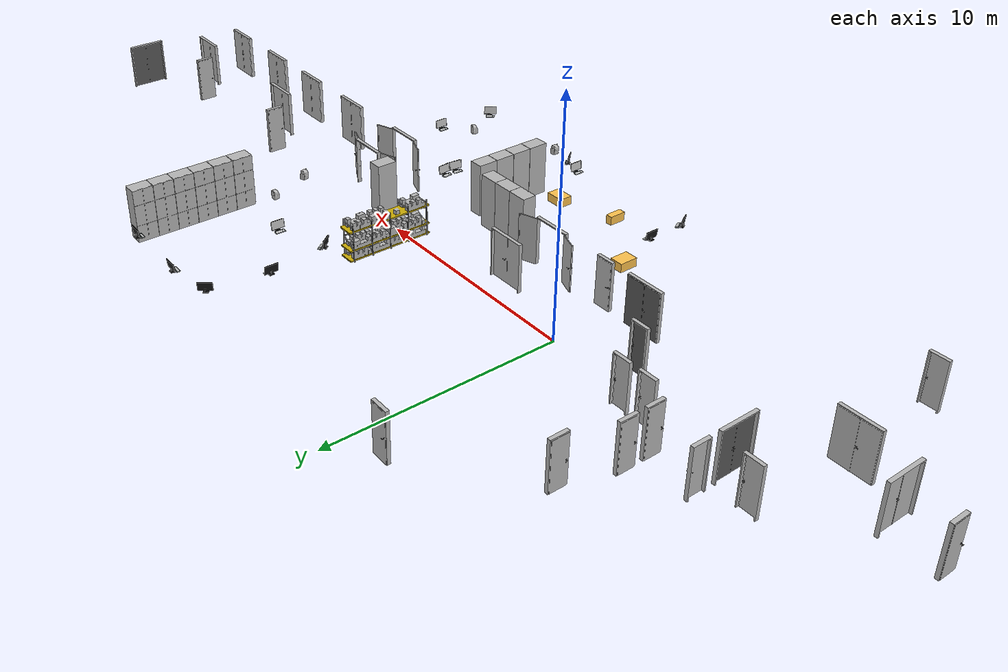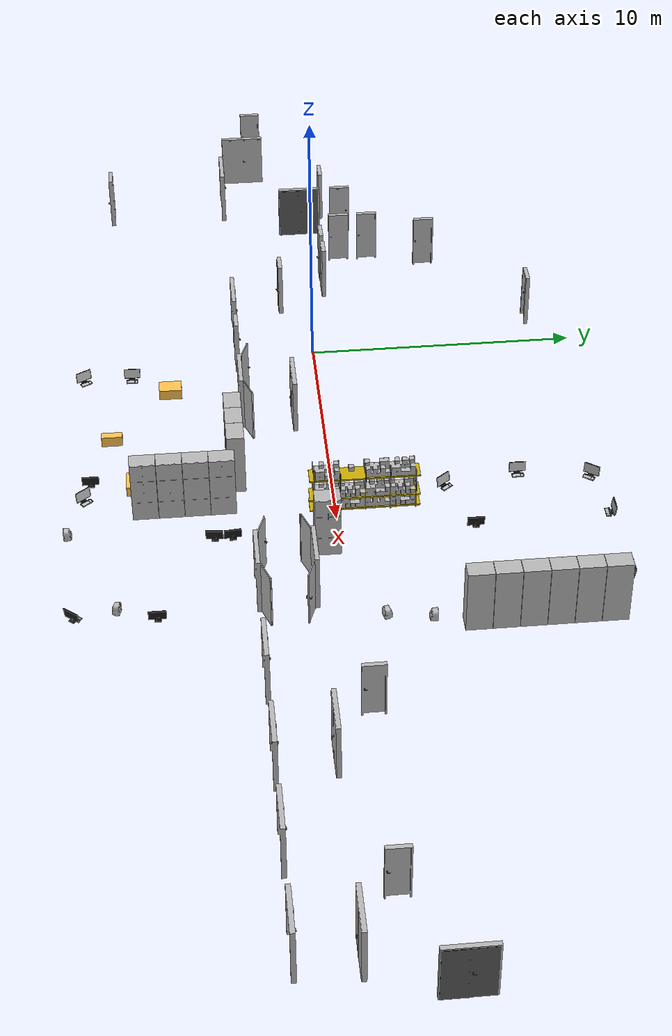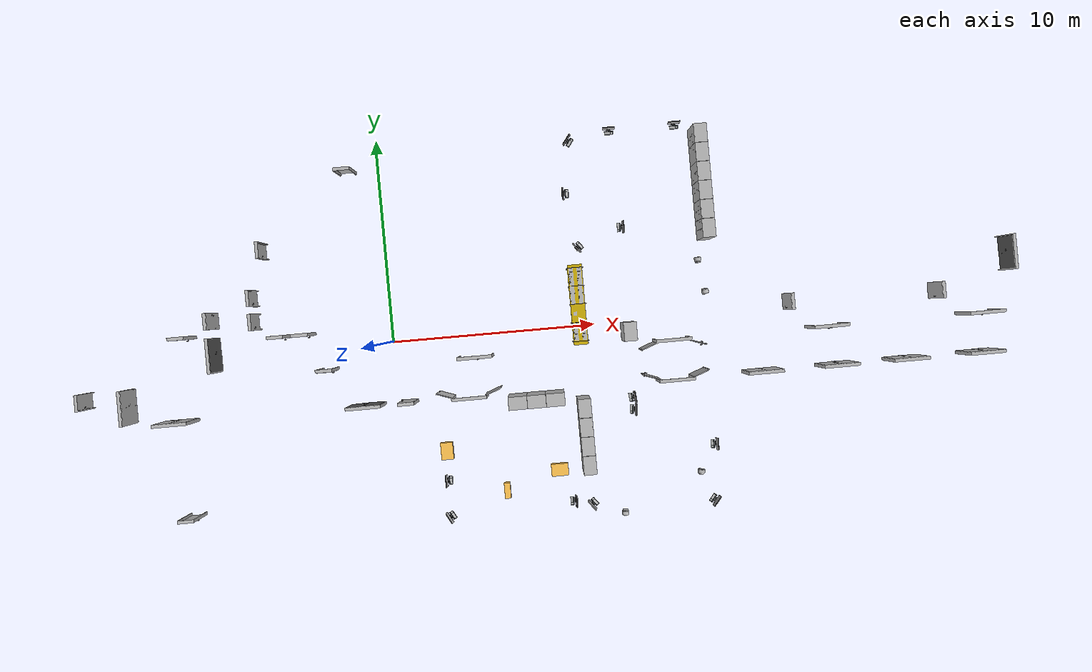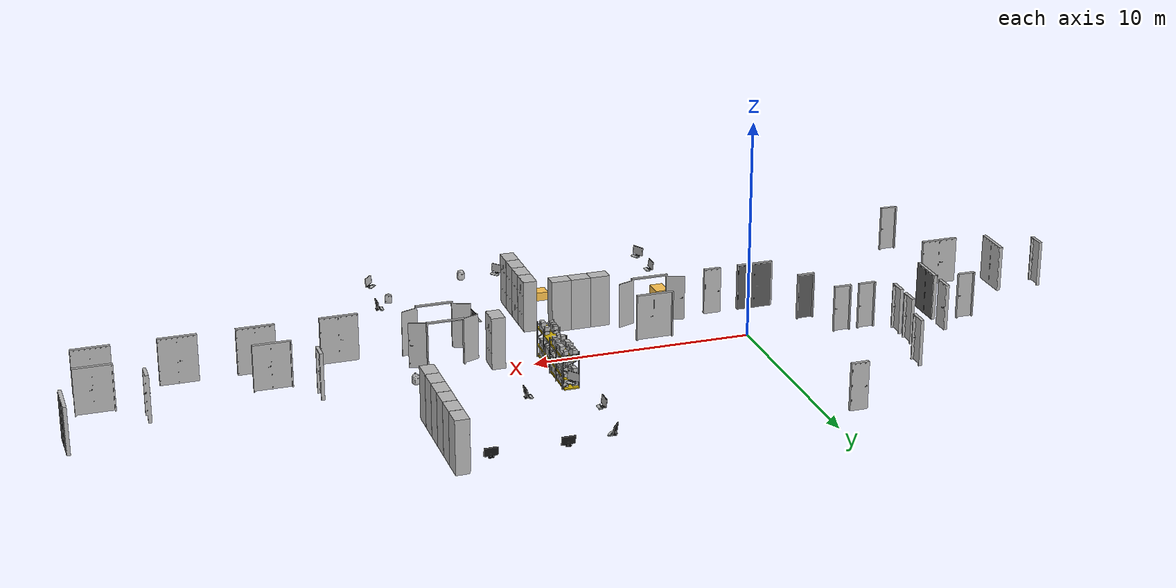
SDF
<sdf version="1.6">
 <world name="default">
  <model name="door_70_close_13">
   <include><uri>model://models/door_70_close</uri></include>
   <pose>-5.878 5.014 0 0 0 -1.5708</pose>
  </model>
  <model name="door_70_close_04">
   <include><uri>model://models/door_70_close</uri></include>
   <pose>-1.51 8.538 0 0 0 3.14159</pose>
  </model>
  <model name="door_160_close_01">
   <include><uri>model://models/door_160_close</uri></include>
   <pose>4.058 -1.04 0 0 0 3.14159</pose>
  </model>
  <model name="door_160_fully_open_01">
   <include><uri>model://models/door_160_fully_open</uri></include>
   <pose>13.673 -1.04 0 0 0 3.14159</pose>
  </model>
  <model name="box_shelf_01">
   <include><uri>model://models/box_shelf</uri></include>
   <pose>9.25 1.05 0 0 0 -1.5708</pose>
  </model>
  <model name="monitor_keyboard_02">
   <include><uri>model://models/monitor_keyboard</uri></include>
   <pose>9.400 9.11 0.76 0 0 2.5026</pose>
  </model>
  <model name="monitor_keyboard_01">
   <include><uri>model://models/monitor_keyboard</uri></include>
   <pose>9.000 6.5085 0.76 0 0 3.14159</pose>
  </model>
  <model name="monitor_keyboard_03">
   <include><uri>model://models/monitor_keyboard</uri></include>
   <pose>11.497 9.500 0.76 0 0 1.5708</pose>
  </model>
  <model name="monitor_keyboard_04">
   <include><uri>model://models/monitor_keyboard</uri></include>
   <pose>14.7 9.500 0.76 0 0 1.5708</pose>
  </model>
  <model name="storage_90_01">
   <include><uri>model://models/storage_90</uri></include>
   <pose>15.76 8.7 0 0 0 -1.5708</pose>
  </model>
  <model name="storage_90_02">
   <include><uri>model://models/storage_90</uri></include>
   <pose>15.76 7.79 0 0 0 -1.5708</pose>
  </model>
  <model name="storage_90_03">
   <include><uri>model://models/storage_90</uri></include>
   <pose>15.76 6.88 0 0 0 -1.5708</pose>
  </model>
  <model name="storage_90_04">
   <include><uri>model://models/storage_90</uri></include>
   <pose>15.76 5.97 0 0 0 -1.5708</pose>
  </model>
  <model name="storage_90_05">
   <include><uri>model://models/storage_90</uri></include>
   <pose>15.76 5.06 0 0 0 -1.5708</pose>
  </model>
  <model name="storage_90_07">
   <include><uri>model://models/storage_90</uri></include>
   <pose>15.76 4.15 0 0 0 -1.5708</pose>
  </model>
  <model name="backpack_red_01">
   <include><uri>model://models/backpack_red</uri></include>
   <pose>15.57 1.165 0.4 0 0 3.4</pose>
  </model>
  <model name="backpack_green_01">
   <include><uri>model://models/backpack_green</uri></include>
   <pose>15.4 2.74 0 0 0 0</pose>
  </model>
  <model name="storage_90_06">
   <include><uri>model://models/storage_90</uri></include>
   <pose>11.60 -0.455 0 0 0 1.5708</pose>
  </model>
  <model name="monitor_keyboard_06">
   <include><uri>model://models/monitor_keyboard</uri></include>
   <pose>9.45 3.8 0.76 0 0 3.8</pose>
  </model>
  <model name="monitor_keyboard_05">
   <include><uri>model://models/monitor_keyboard</uri></include>
   <pose>11.8 4.65  0.76 0 0 0</pose>
  </model>
  <model name="door_160_close_02">
   <include><uri>model://models/door_160_close</uri></include>
   <pose>21.273 -1.04 0 0 0 3.14159</pose>
  </model>
  <model name="door_70_close_05">
   <include><uri>model://models/door_70_close</uri></include>
   <pose>19.51 0.3 0 0 0 -1.5708</pose>
  </model>
  <model name="door_160_close_03">
   <include><uri>model://models/door_160_close</uri></include>
   <pose>28.770 -1.04 0 0 0 3.14159</pose>
  </model>
  <model name="door_160_metal_close_03">
   <include><uri>model://models/door_160_metal_close</uri></include>
   <pose>30.32 1.738 0 0 0 -1.5708</pose>
  </model>
  <model name="door_70_close_06">
   <include><uri>model://models/door_70_close</uri></include>
   <pose>26.76 0.21 0 0 0 -1.5708</pose>
  </model>
  <model name="door_160_close_04">
   <include><uri>model://models/door_160_close</uri></include>
   <pose>28.620 -2.975 0 0 0 0</pose>
  </model>
  <model name="door_160_close_05">
   <include><uri>model://models/door_160_close</uri></include>
   <pose>24.96 -2.975 0 0 0 0</pose>
  </model>
  <model name="door_160_close_06">
   <include><uri>model://models/door_160_close</uri></include>
   <pose>21.601 -2.975 0 0 0 0</pose>
  </model>
  <model name="door_160_close_07">
   <include><uri>model://models/door_160_close</uri></include>
   <pose>17.955 -2.975 0 0 0 0</pose>
  </model>
  <model name="door_160_fully_open_02">
   <include><uri>model://models/door_160_fully_open</uri></include>
   <pose>13.673 -2.975 0 0 0 0</pose>
  </model>
  <model name="monitor_keyboard_07">
   <include><uri>model://models/monitor_keyboard</uri></include>
   <pose>15.45 -6.32 0.76 0 0 0</pose>
  </model>
  <model name="backpack_red_02">
   <include><uri>model://models/backpack_red</uri></include>
   <pose>14.6 -7.67 0.45 0 0 -0.255</pose>
  </model>
  <model name="monitor_keyboard_08">
   <include><uri>model://models/monitor_keyboard</uri></include>
   <pose>15.2 -9.1 0.76 0 0 -0.69</pose>
  </model>
  <model name="backpack_green_02">
   <include><uri>model://models/backpack_green</uri></include>
   <pose>10.7 -9.32 0.45 0 0 3.1</pose>
  </model>
  <model name="monitor_keyboard_09">
   <include><uri>model://models/monitor_keyboard</uri></include>
   <pose>9.1 -8.78 0.76 0 0 3.8</pose>
  </model>
  <model name="storage_90_08">
   <include><uri>model://models/storage_90</uri></include>
   <pose>9.11 -3.915 0 0 0 1.5708</pose>
  </model>
  <model name="storage_90_09">
   <include><uri>model://models/storage_90</uri></include>
   <pose>9.11 -4.825 0 0 0 1.5708</pose>
  </model>
  <model name="storage_90_10">
   <include><uri>model://models/storage_90</uri></include>
   <pose>9.11 -5.735 0 0 0 1.5708</pose>
  </model>
  <model name="storage_90_11">
   <include><uri>model://models/storage_90</uri></include>
   <pose>9.11 -6.645 0 0 0 1.5708</pose>
  </model>
  <model name="monitor_keyboard_10">
   <include><uri>model://models/monitor_keyboard</uri></include>
   <pose>11.65 -3.68 0.76 0 0 0.1</pose>
  </model>
  <model name="monitor_keyboard_11">
   <include><uri>model://models/monitor_keyboard</uri></include>
   <pose>11.65 -4.3 0.76 0 0 -0.1</pose>
  </model>
  <model name="door_160_fully_open_03">
   <include><uri>model://models/door_160_fully_open</uri></include>
   <pose>3.63 -2.975 0 0 0 0</pose>
  </model>
  <model name="monitor_keyboard_13">
   <include><uri>model://models/monitor_keyboard</uri></include>
   <pose>2.102 -8.8 0.76 0 0 3.64159</pose>
  </model>
  <model name="monitor_keyboard_14">
   <include><uri>model://models/monitor_keyboard</uri></include>
   <pose>8.35 -8.5 0.76 0 0 0</pose>
  </model>
  <model name="Box_33x15_02">
   <include><uri>model://models/Box_33x15</uri></include>
   <pose>7.67 -7 0 0 0 0</pose>
  </model>
  <model name="Box_15x30_01">
   <include><uri>model://models/Box_15x30</uri></include>
   <pose>5.0 -7.8 0 0 0 0</pose>
  </model>
  <model name="monitor_keyboard_12">
   <include><uri>model://models/monitor_keyboard</uri></include>
   <pose>2.102 -6.988 0.76 0 0 3.14159</pose>
  </model>
  <model name="Box_33x15_01">
   <include><uri>model://models/Box_33x15</uri></include>
   <pose>2.192 -5.587 0 0 0 1.5708</pose>
  </model>
  <model name="storage_90_12">
   <include><uri>model://models/storage_90</uri></include>
   <pose>5.942 -3.38 0 0 0 0</pose>
  </model>
  <model name="storage_90_13">
   <include><uri>model://models/storage_90</uri></include>
   <pose>6.846 -3.38 0 0 0 0</pose>
  </model>
  <model name="storage_90_14">
   <include><uri>model://models/storage_90</uri></include>
   <pose>7.75 -3.38 0 0 0 0</pose>
  </model>
  <model name="door_70_close_01">
   <include><uri>model://models/door_70_close</uri></include>
   <pose>0.590 -2.975 0 0 0 3.14159</pose>
  </model>
  <model name="door_160_metal_close_01">
   <include><uri>model://models/door_160_metal_close</uri></include>
   <pose>-1.484 -2.975 0 0 0 0</pose>
  </model>
  <model name="door_160_close_08">
   <include><uri>model://models/door_160_close</uri></include>
   <pose>-10.807 -2.975 0 0 0 0</pose>
  </model>
  <model name="door_70_close_07">
   <include><uri>model://models/door_70_close</uri></include>
   <pose>-10.4 -7.646 0 0 0 0</pose>
  </model>
  <model name="door_160_close_09">
   <include><uri>model://models/door_160_close</uri></include>
   <pose>-13.095 -2.0065 0 0 0 -1.5708</pose>
  </model>
  <model name="door_70_close_08">
   <include><uri>model://models/door_70_close</uri></include>
   <pose>-15.14 -1.55 0 0 0 -1.5708</pose>
  </model>
  <model name="door_160_metal_close_02">
   <include><uri>model://models/door_160_metal_close</uri></include>
   <pose>-8.672 0.145 0 0 0 -1.5708</pose>
  </model>
  <model name="door_70_close_02">
   <include><uri>model://models/door_70_close</uri></include>
   <pose>-8.672 1.82 0 0 0 1.5708</pose>
  </model>
  <model name="door_70_close_09">
   <include><uri>model://models/door_70_close</uri></include>
   <pose>-10.14 1.125 0 0 0 0</pose>
  </model>
  <model name="door_70_close_10">
   <include><uri>model://models/door_70_close</uri></include>
   <pose>-6.53 2.75 0 0 0 -1.5708</pose>
  </model>
  <model name="door_70_close_03">
   <include><uri>model://models/door_70_close</uri></include>
   <pose>-6.53 1.592 0 0 0 -1.5708</pose>
  </model>
  <model name="door_70_close_11">
   <include><uri>model://models/door_70_close</uri></include>
   <pose>-5.39 0.77 0 0 0 0</pose>
  </model>
  <model name="door_70_close_12">
   <include><uri>model://models/door_70_close</uri></include>
   <pose>-4.21 0.77 0 0 0 0</pose>
  </model>
  <model name="door_70_metal_close">
   <include><uri>model://models/door_70_metal_close</uri></include>
   <pose>-3.2 -1.04 0 0 0 0</pose>
  </model>
 </world>
</sdf>
